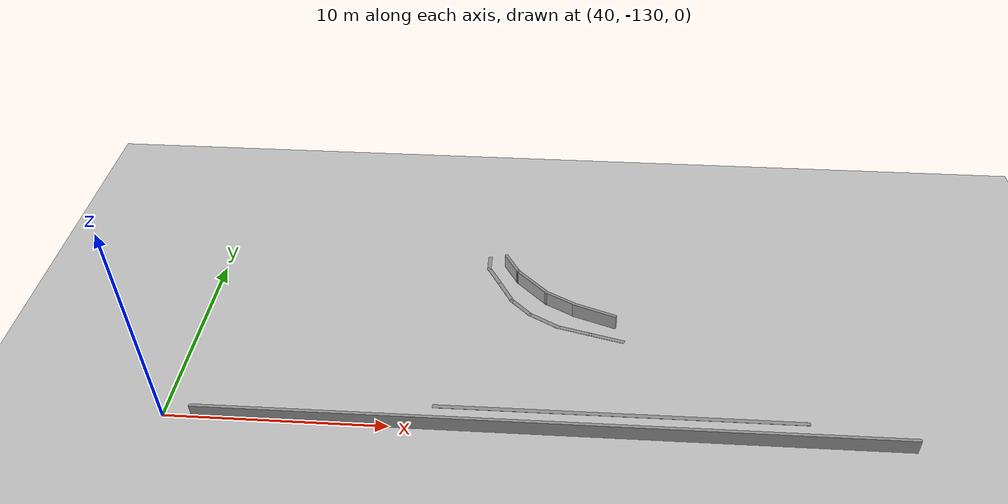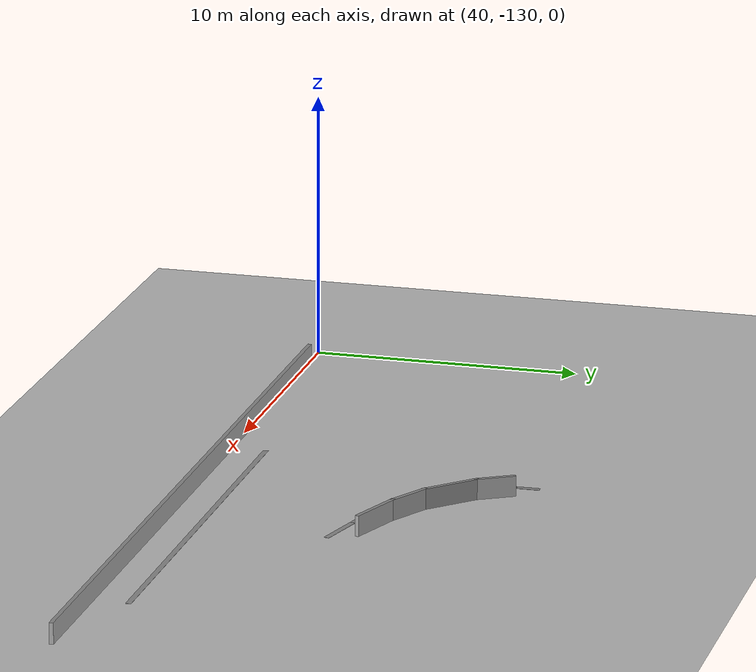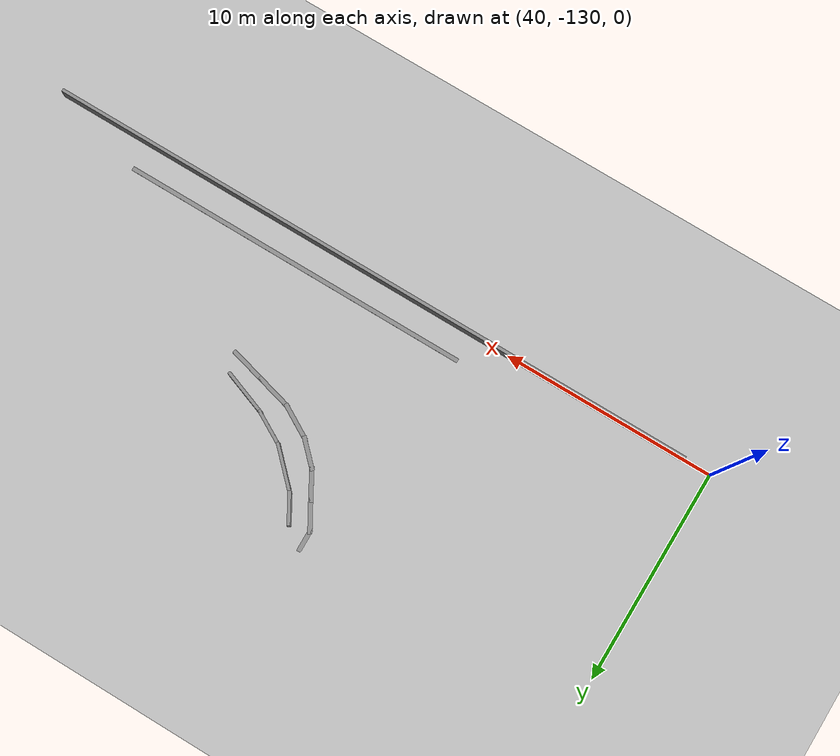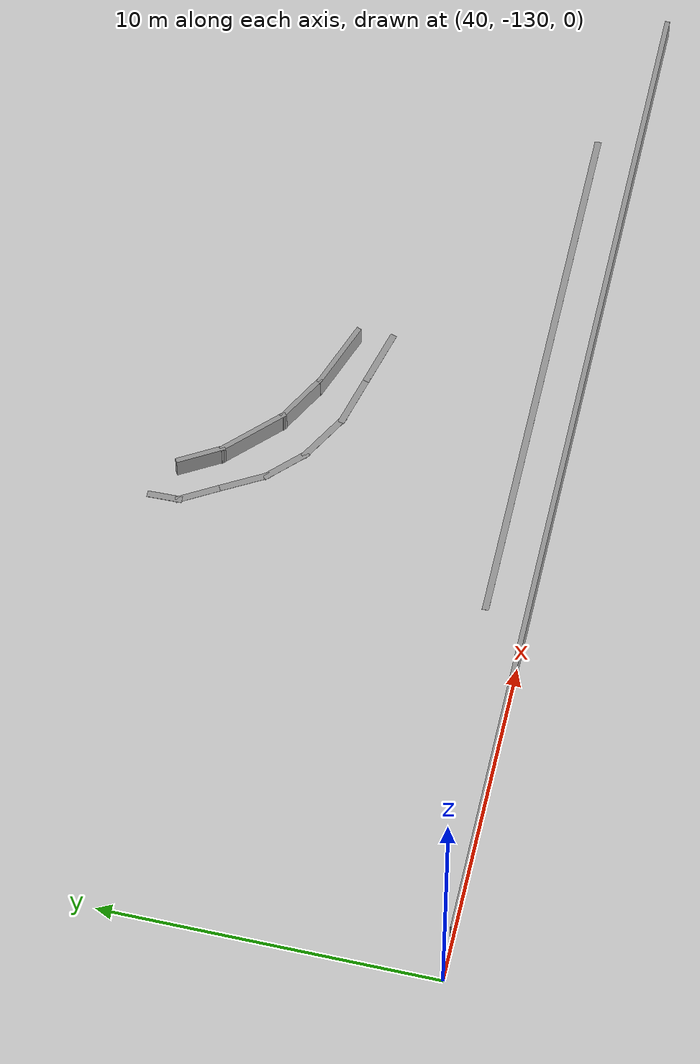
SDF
<sdf version="1.6">
 <world name="default">
  <model name="ground_plane">
   <static>1</static>
   <link name="link">
    <collision name="collision">
     <geometry><plane><normal>0 0 1</normal><size>100 100</size></plane></geometry>
     <surface>
      <contact><collide_bitmask>65535</collide_bitmask></contact>
      <friction><ode><mu>100</mu><mu2>50</mu2></ode></friction>
     </surface>
    </collision>
    <visual name="visual">
     <cast_shadows>0</cast_shadows>
     <geometry><plane><normal>0 0 1</normal><size>100 100</size></plane></geometry>
     <material>
      <script><uri>file://media/materials/scripts/gazebo.material</uri><name>Gazebo/Grey</name></script>
     </material>
    </visual>
   </link>
  </model>
  <model name="GercekDuvarSeritKoyu1">
   <link name="Wall_162">
    <pose>64.8126 -5.48609 0 0 -0 0.523649</pose>
    <inertial>
     <mass>1</mass>
     <inertia><ixx>1</ixx><ixy>0</ixy><ixz>0</ixz><iyy>1</iyy><iyz>0</iyz><izz>1</izz></inertia>
    </inertial>
    <visual name="Wall_162_Visual">
     <pose>0 0 0.375 0 -0 0</pose>
     <geometry><box><size>1.5 0.15 0.75</size></box></geometry>
     <material>
      <script><uri>file://media/materials/scripts/gazebo.material</uri><name>Gazebo/Grey</name></script>
      <ambient>0.5 0.5 0.5 1</ambient>
      <shader type="pixel"><normal_map>__default__</normal_map></shader>
      <diffuse>0.7 0.7 0.7 1</diffuse>
      <specular>0.01 0.01 0.01 1</specular>
      <emissive>0 0 0 1</emissive>
     </material>
     <meta><layer>0</layer></meta>
    </visual>
    <collision name="Wall_162_Collision">
     <pose>0 0 0.375 0 -0 0</pose>
     <geometry><box><size>1.5 0.15 0.75</size></box></geometry>
     <surface>
      <friction>
       <ode><mu>1</mu><mu2>1</mu2><fdir1>0 0 0</fdir1><slip1>0</slip1><slip2>0</slip2></ode>
       <torsional>
        <coefficient>1</coefficient>
        <patch_radius>0</patch_radius>
        <surface_radius>0</surface_radius>
        <use_patch_radius>1</use_patch_radius>
        <ode><slip>0</slip></ode>
       </torsional>
      </friction>
      <bounce><restitution_coefficient>0</restitution_coefficient><threshold>1e+06</threshold></bounce>
      <contact>
       <collide_without_contact>0</collide_without_contact>
       <collide_without_contact_bitmask>1</collide_without_contact_bitmask>
       <collide_bitmask>1</collide_bitmask>
       <ode>
        <soft_cfm>0</soft_cfm>
        <soft_erp>0.2</soft_erp>
        <kp>1e+13</kp>
        <kd>1</kd>
        <max_vel>0.01</max_vel>
        <min_depth>0</min_depth>
       </ode>
       <bullet>
        <split_impulse>1</split_impulse>
        <split_impulse_penetration_threshold>-0.01</split_impulse_penetration_threshold>
        <soft_cfm>0</soft_cfm>
        <soft_erp>0.2</soft_erp>
        <kp>1e+13</kp>
        <kd>1</kd>
       </bullet>
      </contact>
     </surface>
    </collision>
   </link>
   <link name="Wall_163">
    <pose>66.1396 -4.40609 0 0 -0 0.785398</pose>
    <inertial>
     <mass>1</mass>
     <inertia><ixx>1</ixx><ixy>0</ixy><ixz>0</ixz><iyy>1</iyy><iyz>0</iyz><izz>1</izz></inertia>
    </inertial>
    <visual name="Wall_163_Visual">
     <pose>0 0 0.375 0 -0 0</pose>
     <geometry><box><size>2.25 0.15 0.75</size></box></geometry>
     <material>
      <script><uri>file://media/materials/scripts/gazebo.material</uri><name>Gazebo/Grey</name></script>
      <ambient>0.5 0.5 0.5 1</ambient>
      <shader type="pixel"><normal_map>__default__</normal_map></shader>
      <diffuse>0.7 0.7 0.7 1</diffuse>
      <specular>0.01 0.01 0.01 1</specular>
      <emissive>0 0 0 1</emissive>
     </material>
     <meta><layer>0</layer></meta>
    </visual>
    <collision name="Wall_163_Collision">
     <pose>0 0 0.375 0 -0 0</pose>
     <geometry><box><size>2.25 0.15 0.75</size></box></geometry>
     <surface>
      <friction>
       <ode><mu>1</mu><mu2>1</mu2><fdir1>0 0 0</fdir1><slip1>0</slip1><slip2>0</slip2></ode>
       <torsional>
        <coefficient>1</coefficient>
        <patch_radius>0</patch_radius>
        <surface_radius>0</surface_radius>
        <use_patch_radius>1</use_patch_radius>
        <ode><slip>0</slip></ode>
       </torsional>
      </friction>
      <bounce><restitution_coefficient>0</restitution_coefficient><threshold>1e+06</threshold></bounce>
      <contact>
       <collide_without_contact>0</collide_without_contact>
       <collide_without_contact_bitmask>1</collide_without_contact_bitmask>
       <collide_bitmask>1</collide_bitmask>
       <ode>
        <soft_cfm>0</soft_cfm>
        <soft_erp>0.2</soft_erp>
        <kp>1e+13</kp>
        <kd>1</kd>
        <max_vel>0.01</max_vel>
        <min_depth>0</min_depth>
       </ode>
       <bullet>
        <split_impulse>1</split_impulse>
        <split_impulse_penetration_threshold>-0.01</split_impulse_penetration_threshold>
        <soft_cfm>0</soft_cfm>
        <soft_erp>0.2</soft_erp>
        <kp>1e+13</kp>
        <kd>1</kd>
       </bullet>
      </contact>
     </surface>
    </collision>
   </link>
   <link name="Wall_164">
    <pose>67.2706 -2.97109 0 0 -0 1.0595</pose>
    <inertial>
     <mass>1</mass>
     <inertia><ixx>1</ixx><ixy>0</ixy><ixz>0</ixz><iyy>1</iyy><iyz>0</iyz><izz>1</izz></inertia>
    </inertial>
    <visual name="Wall_164_Visual">
     <pose>0 0 0.375 0 -0 0</pose>
     <geometry><box><size>1.7381 0.15 0.75</size></box></geometry>
     <material>
      <script><uri>file://media/materials/scripts/gazebo.material</uri><name>Gazebo/Grey</name></script>
      <ambient>0.5 0.5 0.5 1</ambient>
      <shader type="pixel"><normal_map>__default__</normal_map></shader>
      <diffuse>0.7 0.7 0.7 1</diffuse>
      <specular>0.01 0.01 0.01 1</specular>
      <emissive>0 0 0 1</emissive>
     </material>
     <meta><layer>0</layer></meta>
    </visual>
    <collision name="Wall_164_Collision">
     <pose>0 0 0.375 0 -0 0</pose>
     <geometry><box><size>1.7381 0.15 0.75</size></box></geometry>
     <surface>
      <friction>
       <ode><mu>1</mu><mu2>1</mu2><fdir1>0 0 0</fdir1><slip1>0</slip1><slip2>0</slip2></ode>
       <torsional>
        <coefficient>1</coefficient>
        <patch_radius>0</patch_radius>
        <surface_radius>0</surface_radius>
        <use_patch_radius>1</use_patch_radius>
        <ode><slip>0</slip></ode>
       </torsional>
      </friction>
      <bounce><restitution_coefficient>0</restitution_coefficient><threshold>1e+06</threshold></bounce>
      <contact>
       <collide_without_contact>0</collide_without_contact>
       <collide_without_contact_bitmask>1</collide_without_contact_bitmask>
       <collide_bitmask>1</collide_bitmask>
       <ode>
        <soft_cfm>0</soft_cfm>
        <soft_erp>0.2</soft_erp>
        <kp>1e+13</kp>
        <kd>1</kd>
        <max_vel>0.01</max_vel>
        <min_depth>0</min_depth>
       </ode>
       <bullet>
        <split_impulse>1</split_impulse>
        <split_impulse_penetration_threshold>-0.01</split_impulse_penetration_threshold>
        <soft_cfm>0</soft_cfm>
        <soft_erp>0.2</soft_erp>
        <kp>1e+13</kp>
        <kd>1</kd>
       </bullet>
      </contact>
     </surface>
    </collision>
   </link>
   <link name="Wall_165">
    <pose>68.0293 -1.31009 0 0 -0 1.21606</pose>
    <inertial>
     <mass>1</mass>
     <inertia><ixx>1</ixx><ixy>0</ixy><ixz>0</ixz><iyy>1</iyy><iyz>0</iyz><izz>1</izz></inertia>
    </inertial>
    <visual name="Wall_165_Visual">
     <pose>0 0 0.375 0 -0 0</pose>
     <geometry><box><size>2.21561 0.15 0.75</size></box></geometry>
     <material>
      <script><uri>file://media/materials/scripts/gazebo.material</uri><name>Gazebo/Grey</name></script>
      <ambient>0.5 0.5 0.5 1</ambient>
      <shader type="pixel"><normal_map>__default__</normal_map></shader>
      <diffuse>0.7 0.7 0.7 1</diffuse>
      <specular>0.01 0.01 0.01 1</specular>
      <emissive>0 0 0 1</emissive>
     </material>
     <meta><layer>0</layer></meta>
    </visual>
    <collision name="Wall_165_Collision">
     <pose>0 0 0.375 0 -0 0</pose>
     <geometry><box><size>2.21561 0.15 0.75</size></box></geometry>
     <surface>
      <friction>
       <ode><mu>1</mu><mu2>1</mu2><fdir1>0 0 0</fdir1><slip1>0</slip1><slip2>0</slip2></ode>
       <torsional>
        <coefficient>1</coefficient>
        <patch_radius>0</patch_radius>
        <surface_radius>0</surface_radius>
        <use_patch_radius>1</use_patch_radius>
        <ode><slip>0</slip></ode>
       </torsional>
      </friction>
      <bounce><restitution_coefficient>0</restitution_coefficient><threshold>1e+06</threshold></bounce>
      <contact>
       <collide_without_contact>0</collide_without_contact>
       <collide_without_contact_bitmask>1</collide_without_contact_bitmask>
       <collide_bitmask>1</collide_bitmask>
       <ode>
        <soft_cfm>0</soft_cfm>
        <soft_erp>0.2</soft_erp>
        <kp>1e+13</kp>
        <kd>1</kd>
        <max_vel>0.01</max_vel>
        <min_depth>0</min_depth>
       </ode>
       <bullet>
        <split_impulse>1</split_impulse>
        <split_impulse_penetration_threshold>-0.01</split_impulse_penetration_threshold>
        <soft_cfm>0</soft_cfm>
        <soft_erp>0.2</soft_erp>
        <kp>1e+13</kp>
        <kd>1</kd>
       </bullet>
      </contact>
     </surface>
    </collision>
   </link>
   <link name="Wall_20">
    <pose>75.2501 -3.08159 0 0 -0 1.5708</pose>
    <inertial>
     <mass>1</mass>
     <inertia><ixx>1</ixx><ixy>0</ixy><ixz>0</ixz><iyy>1</iyy><iyz>0</iyz><izz>1</izz></inertia>
    </inertial>
    <visual name="Wall_20_Visual">
     <pose>0 0 0.375 0 -0 0</pose>
     <geometry><box><size>31.25 0.15 0.75</size></box></geometry>
     <material>
      <script><uri>file://media/materials/scripts/gazebo.material</uri><name>Gazebo/Grey</name></script>
      <ambient>0.5 0.5 0.5 1</ambient>
      <shader type="pixel"><normal_map>__default__</normal_map></shader>
      <diffuse>0.7 0.7 0.7 1</diffuse>
      <specular>0.01 0.01 0.01 1</specular>
      <emissive>0 0 0 1</emissive>
     </material>
     <meta><layer>0</layer></meta>
    </visual>
    <collision name="Wall_20_Collision">
     <pose>0 0 0.375 0 -0 0</pose>
     <geometry><box><size>31.25 0.15 0.75</size></box></geometry>
     <surface>
      <friction>
       <ode><mu>1</mu><mu2>1</mu2><fdir1>0 0 0</fdir1><slip1>0</slip1><slip2>0</slip2></ode>
       <torsional>
        <coefficient>1</coefficient>
        <patch_radius>0</patch_radius>
        <surface_radius>0</surface_radius>
        <use_patch_radius>1</use_patch_radius>
        <ode><slip>0</slip></ode>
       </torsional>
      </friction>
      <bounce><restitution_coefficient>0</restitution_coefficient><threshold>1e+06</threshold></bounce>
      <contact>
       <collide_without_contact>0</collide_without_contact>
       <collide_without_contact_bitmask>1</collide_without_contact_bitmask>
       <collide_bitmask>1</collide_bitmask>
       <ode>
        <soft_cfm>0</soft_cfm>
        <soft_erp>0.2</soft_erp>
        <kp>1e+13</kp>
        <kd>1</kd>
        <max_vel>0.01</max_vel>
        <min_depth>0</min_depth>
       </ode>
       <bullet>
        <split_impulse>1</split_impulse>
        <split_impulse_penetration_threshold>-0.01</split_impulse_penetration_threshold>
        <soft_cfm>0</soft_cfm>
        <soft_erp>0.2</soft_erp>
        <kp>1e+13</kp>
        <kd>1</kd>
       </bullet>
      </contact>
     </surface>
    </collision>
   </link>
   <link name="Wall_264">
    <pose>73.9771 -0.048588 0 0 -0 1.5708</pose>
    <visual name="Wall_264_Visual">
     <pose>0 0 0.005 0 -0 0</pose>
     <geometry><box><size>16.55 0.2 0.01</size></box></geometry>
     <material>
      <script><uri>file://media/materials/scripts/gazebo.material</uri><name>Gazebo/Grey</name></script>
      <ambient>1 1 1 1</ambient>
      <shader type="pixel"/>
     </material>
     <meta><layer>0</layer></meta>
    </visual>
    <collision name="Wall_264_Collision">
     <pose>0 0 0.005 0 -0 0</pose>
     <geometry><box><size>16.55 0.2 0.01</size></box></geometry>
     <surface>
      <friction>
       <ode><mu>1</mu><mu2>1</mu2><fdir1>0 0 0</fdir1><slip1>0</slip1><slip2>0</slip2></ode>
       <torsional>
        <coefficient>1</coefficient>
        <patch_radius>0</patch_radius>
        <surface_radius>0</surface_radius>
        <use_patch_radius>1</use_patch_radius>
        <ode><slip>0</slip></ode>
       </torsional>
      </friction>
      <bounce><restitution_coefficient>0</restitution_coefficient><threshold>1e+06</threshold></bounce>
      <contact>
       <collide_without_contact>0</collide_without_contact>
       <collide_without_contact_bitmask>1</collide_without_contact_bitmask>
       <collide_bitmask>1</collide_bitmask>
       <ode>
        <soft_cfm>0</soft_cfm>
        <soft_erp>0.2</soft_erp>
        <kp>1e+13</kp>
        <kd>1</kd>
        <max_vel>0.01</max_vel>
        <min_depth>0</min_depth>
       </ode>
       <bullet>
        <split_impulse>1</split_impulse>
        <split_impulse_penetration_threshold>-0.01</split_impulse_penetration_threshold>
        <soft_cfm>0</soft_cfm>
        <soft_erp>0.2</soft_erp>
        <kp>1e+13</kp>
        <kd>1</kd>
       </bullet>
      </contact>
     </surface>
    </collision>
   </link>
   <link name="Wall_482">
    <pose>64.0051 -6.71659 0 0 -0 0.021173</pose>
    <visual name="Wall_482_Visual">
     <pose>0 0 0.005 0 -0 0</pose>
     <geometry><box><size>1.05012 0.2 0.01</size></box></geometry>
     <material>
      <script><uri>file://media/materials/scripts/gazebo.material</uri><name>Gazebo/Grey</name></script>
      <ambient>1 1 1 1</ambient>
      <shader type="pixel"/>
     </material>
     <meta><layer>0</layer></meta>
    </visual>
    <collision name="Wall_482_Collision">
     <pose>0 0 0.005 0 -0 0</pose>
     <geometry><box><size>1.05012 0.2 0.01</size></box></geometry>
     <surface>
      <friction>
       <ode><mu>1</mu><mu2>1</mu2><fdir1>0 0 0</fdir1><slip1>0</slip1><slip2>0</slip2></ode>
       <torsional>
        <coefficient>1</coefficient>
        <patch_radius>0</patch_radius>
        <surface_radius>0</surface_radius>
        <use_patch_radius>1</use_patch_radius>
        <ode><slip>0</slip></ode>
       </torsional>
      </friction>
      <bounce><restitution_coefficient>0</restitution_coefficient><threshold>1e+06</threshold></bounce>
      <contact>
       <collide_without_contact>0</collide_without_contact>
       <collide_without_contact_bitmask>1</collide_without_contact_bitmask>
       <collide_bitmask>1</collide_bitmask>
       <ode>
        <soft_cfm>0</soft_cfm>
        <soft_erp>0.2</soft_erp>
        <kp>1e+13</kp>
        <kd>1</kd>
        <max_vel>0.01</max_vel>
        <min_depth>0</min_depth>
       </ode>
       <bullet>
        <split_impulse>1</split_impulse>
        <split_impulse_penetration_threshold>-0.01</split_impulse_penetration_threshold>
        <soft_cfm>0</soft_cfm>
        <soft_erp>0.2</soft_erp>
        <kp>1e+13</kp>
        <kd>1</kd>
       </bullet>
      </contact>
     </surface>
    </collision>
   </link>
   <link name="Wall_483">
    <pose>65.0146 -6.37059 0 0 -0 0.523007</pose>
    <visual name="Wall_483_Visual">
     <pose>0 0 0.005 0 -0 0</pose>
     <geometry><box><size>1.5498 0.2 0.01</size></box></geometry>
     <material>
      <script><uri>file://media/materials/scripts/gazebo.material</uri><name>Gazebo/Grey</name></script>
      <ambient>1 1 1 1</ambient>
      <shader type="pixel"/>
     </material>
     <meta><layer>0</layer></meta>
    </visual>
    <collision name="Wall_483_Collision">
     <pose>0 0 0.005 0 -0 0</pose>
     <geometry><box><size>1.5498 0.2 0.01</size></box></geometry>
     <surface>
      <friction>
       <ode><mu>1</mu><mu2>1</mu2><fdir1>0 0 0</fdir1><slip1>0</slip1><slip2>0</slip2></ode>
       <torsional>
        <coefficient>1</coefficient>
        <patch_radius>0</patch_radius>
        <surface_radius>0</surface_radius>
        <use_patch_radius>1</use_patch_radius>
        <ode><slip>0</slip></ode>
       </torsional>
      </friction>
      <bounce><restitution_coefficient>0</restitution_coefficient><threshold>1e+06</threshold></bounce>
      <contact>
       <collide_without_contact>0</collide_without_contact>
       <collide_without_contact_bitmask>1</collide_without_contact_bitmask>
       <collide_bitmask>1</collide_bitmask>
       <ode>
        <soft_cfm>0</soft_cfm>
        <soft_erp>0.2</soft_erp>
        <kp>1e+13</kp>
        <kd>1</kd>
        <max_vel>0.01</max_vel>
        <min_depth>0</min_depth>
       </ode>
       <bullet>
        <split_impulse>1</split_impulse>
        <split_impulse_penetration_threshold>-0.01</split_impulse_penetration_threshold>
        <soft_cfm>0</soft_cfm>
        <soft_erp>0.2</soft_erp>
        <kp>1e+13</kp>
        <kd>1</kd>
       </bullet>
      </contact>
     </surface>
    </collision>
   </link>
   <link name="Wall_484">
    <pose>66.1836 -5.70459 0 0 -0 0.512674</pose>
    <visual name="Wall_484_Visual">
     <pose>0 0 0.005 0 -0 0</pose>
     <geometry><box><size>1.54168 0.2 0.01</size></box></geometry>
     <material>
      <script><uri>file://media/materials/scripts/gazebo.material</uri><name>Gazebo/Grey</name></script>
      <ambient>1 1 1 1</ambient>
      <shader type="pixel"/>
     </material>
     <meta><layer>0</layer></meta>
    </visual>
    <collision name="Wall_484_Collision">
     <pose>0 0 0.005 0 -0 0</pose>
     <geometry><box><size>1.54168 0.2 0.01</size></box></geometry>
     <surface>
      <friction>
       <ode><mu>1</mu><mu2>1</mu2><fdir1>0 0 0</fdir1><slip1>0</slip1><slip2>0</slip2></ode>
       <torsional>
        <coefficient>1</coefficient>
        <patch_radius>0</patch_radius>
        <surface_radius>0</surface_radius>
        <use_patch_radius>1</use_patch_radius>
        <ode><slip>0</slip></ode>
       </torsional>
      </friction>
      <bounce><restitution_coefficient>0</restitution_coefficient><threshold>1e+06</threshold></bounce>
      <contact>
       <collide_without_contact>0</collide_without_contact>
       <collide_without_contact_bitmask>1</collide_without_contact_bitmask>
       <collide_bitmask>1</collide_bitmask>
       <ode>
        <soft_cfm>0</soft_cfm>
        <soft_erp>0.2</soft_erp>
        <kp>1e+13</kp>
        <kd>1</kd>
        <max_vel>0.01</max_vel>
        <min_depth>0</min_depth>
       </ode>
       <bullet>
        <split_impulse>1</split_impulse>
        <split_impulse_penetration_threshold>-0.01</split_impulse_penetration_threshold>
        <soft_cfm>0</soft_cfm>
        <soft_erp>0.2</soft_erp>
        <kp>1e+13</kp>
        <kd>1</kd>
       </bullet>
      </contact>
     </surface>
    </collision>
   </link>
   <link name="Wall_485">
    <pose>67.2456 -4.89859 0 0 -0 0.784874</pose>
    <visual name="Wall_485_Visual">
     <pose>0 0 0.005 0 -0 0</pose>
     <geometry><box><size>1.5501 0.2 0.01</size></box></geometry>
     <material>
      <script><uri>file://media/materials/scripts/gazebo.material</uri><name>Gazebo/Grey</name></script>
      <ambient>1 1 1 1</ambient>
      <shader type="pixel"/>
     </material>
     <meta><layer>0</layer></meta>
    </visual>
    <collision name="Wall_485_Collision">
     <pose>0 0 0.005 0 -0 0</pose>
     <geometry><box><size>1.5501 0.2 0.01</size></box></geometry>
     <surface>
      <friction>
       <ode><mu>1</mu><mu2>1</mu2><fdir1>0 0 0</fdir1><slip1>0</slip1><slip2>0</slip2></ode>
       <torsional>
        <coefficient>1</coefficient>
        <patch_radius>0</patch_radius>
        <surface_radius>0</surface_radius>
        <use_patch_radius>1</use_patch_radius>
        <ode><slip>0</slip></ode>
       </torsional>
      </friction>
      <bounce><restitution_coefficient>0</restitution_coefficient><threshold>1e+06</threshold></bounce>
      <contact>
       <collide_without_contact>0</collide_without_contact>
       <collide_without_contact_bitmask>1</collide_without_contact_bitmask>
       <collide_bitmask>1</collide_bitmask>
       <ode>
        <soft_cfm>0</soft_cfm>
        <soft_erp>0.2</soft_erp>
        <kp>1e+13</kp>
        <kd>1</kd>
        <max_vel>0.01</max_vel>
        <min_depth>0</min_depth>
       </ode>
       <bullet>
        <split_impulse>1</split_impulse>
        <split_impulse_penetration_threshold>-0.01</split_impulse_penetration_threshold>
        <soft_cfm>0</soft_cfm>
        <soft_erp>0.2</soft_erp>
        <kp>1e+13</kp>
        <kd>1</kd>
       </bullet>
      </contact>
     </surface>
    </collision>
   </link>
   <link name="Wall_486">
    <pose>68.1231 -3.72859 0 0 -0 1.04731</pose>
    <visual name="Wall_486_Visual">
     <pose>0 0 0.005 0 -0 0</pose>
     <geometry><box><size>1.80029 0.2 0.01</size></box></geometry>
     <material>
      <script><uri>file://media/materials/scripts/gazebo.material</uri><name>Gazebo/Grey</name></script>
      <ambient>1 1 1 1</ambient>
      <shader type="pixel"/>
     </material>
     <meta><layer>0</layer></meta>
    </visual>
    <collision name="Wall_486_Collision">
     <pose>0 0 0.005 0 -0 0</pose>
     <geometry><box><size>1.80029 0.2 0.01</size></box></geometry>
     <surface>
      <friction>
       <ode><mu>1</mu><mu2>1</mu2><fdir1>0 0 0</fdir1><slip1>0</slip1><slip2>0</slip2></ode>
       <torsional>
        <coefficient>1</coefficient>
        <patch_radius>0</patch_radius>
        <surface_radius>0</surface_radius>
        <use_patch_radius>1</use_patch_radius>
        <ode><slip>0</slip></ode>
       </torsional>
      </friction>
      <bounce><restitution_coefficient>0</restitution_coefficient><threshold>1e+06</threshold></bounce>
      <contact>
       <collide_without_contact>0</collide_without_contact>
       <collide_without_contact_bitmask>1</collide_without_contact_bitmask>
       <collide_bitmask>1</collide_bitmask>
       <ode>
        <soft_cfm>0</soft_cfm>
        <soft_erp>0.2</soft_erp>
        <kp>1e+13</kp>
        <kd>1</kd>
        <max_vel>0.01</max_vel>
        <min_depth>0</min_depth>
       </ode>
       <bullet>
        <split_impulse>1</split_impulse>
        <split_impulse_penetration_threshold>-0.01</split_impulse_penetration_threshold>
        <soft_cfm>0</soft_cfm>
        <soft_erp>0.2</soft_erp>
        <kp>1e+13</kp>
        <kd>1</kd>
       </bullet>
      </contact>
     </surface>
    </collision>
   </link>
   <link name="Wall_487">
    <pose>68.7301 -2.26309 0 0 -0 1.30899</pose>
    <visual name="Wall_487_Visual">
     <pose>0 0 0.005 0 -0 0</pose>
     <geometry><box><size>1.79998 0.2 0.01</size></box></geometry>
     <material>
      <script><uri>file://media/materials/scripts/gazebo.material</uri><name>Gazebo/Grey</name></script>
      <ambient>1 1 1 1</ambient>
      <shader type="pixel"/>
     </material>
     <meta><layer>0</layer></meta>
    </visual>
    <collision name="Wall_487_Collision">
     <pose>0 0 0.005 0 -0 0</pose>
     <geometry><box><size>1.79998 0.2 0.01</size></box></geometry>
     <surface>
      <friction>
       <ode><mu>1</mu><mu2>1</mu2><fdir1>0 0 0</fdir1><slip1>0</slip1><slip2>0</slip2></ode>
       <torsional>
        <coefficient>1</coefficient>
        <patch_radius>0</patch_radius>
        <surface_radius>0</surface_radius>
        <use_patch_radius>1</use_patch_radius>
        <ode><slip>0</slip></ode>
       </torsional>
      </friction>
      <bounce><restitution_coefficient>0</restitution_coefficient><threshold>1e+06</threshold></bounce>
      <contact>
       <collide_without_contact>0</collide_without_contact>
       <collide_without_contact_bitmask>1</collide_without_contact_bitmask>
       <collide_bitmask>1</collide_bitmask>
       <ode>
        <soft_cfm>0</soft_cfm>
        <soft_erp>0.2</soft_erp>
        <kp>1e+13</kp>
        <kd>1</kd>
        <max_vel>0.01</max_vel>
        <min_depth>0</min_depth>
       </ode>
       <bullet>
        <split_impulse>1</split_impulse>
        <split_impulse_penetration_threshold>-0.01</split_impulse_penetration_threshold>
        <soft_cfm>0</soft_cfm>
        <soft_erp>0.2</soft_erp>
        <kp>1e+13</kp>
        <kd>1</kd>
       </bullet>
      </contact>
     </surface>
    </collision>
   </link>
   <link name="Wall_488">
    <pose>69.1441 -0.71759 0 0 -0 1.30915</pose>
    <visual name="Wall_488_Visual">
     <pose>0 0 0.005 0 -0 0</pose>
     <geometry><box><size>1.80048 0.2 0.01</size></box></geometry>
     <material>
      <script><uri>file://media/materials/scripts/gazebo.material</uri><name>Gazebo/Grey</name></script>
      <ambient>1 1 1 1</ambient>
      <shader type="pixel"/>
     </material>
     <meta><layer>0</layer></meta>
    </visual>
    <collision name="Wall_488_Collision">
     <pose>0 0 0.005 0 -0 0</pose>
     <geometry><box><size>1.80048 0.2 0.01</size></box></geometry>
     <surface>
      <friction>
       <ode><mu>1</mu><mu2>1</mu2><fdir1>0 0 0</fdir1><slip1>0</slip1><slip2>0</slip2></ode>
       <torsional>
        <coefficient>1</coefficient>
        <patch_radius>0</patch_radius>
        <surface_radius>0</surface_radius>
        <use_patch_radius>1</use_patch_radius>
        <ode><slip>0</slip></ode>
       </torsional>
      </friction>
      <bounce><restitution_coefficient>0</restitution_coefficient><threshold>1e+06</threshold></bounce>
      <contact>
       <collide_without_contact>0</collide_without_contact>
       <collide_without_contact_bitmask>1</collide_without_contact_bitmask>
       <collide_bitmask>1</collide_bitmask>
       <ode>
        <soft_cfm>0</soft_cfm>
        <soft_erp>0.2</soft_erp>
        <kp>1e+13</kp>
        <kd>1</kd>
        <max_vel>0.01</max_vel>
        <min_depth>0</min_depth>
       </ode>
       <bullet>
        <split_impulse>1</split_impulse>
        <split_impulse_penetration_threshold>-0.01</split_impulse_penetration_threshold>
        <soft_cfm>0</soft_cfm>
        <soft_erp>0.2</soft_erp>
        <kp>1e+13</kp>
        <kd>1</kd>
       </bullet>
      </contact>
     </surface>
    </collision>
   </link>
   <static>1</static>
   <pose>59.9324 -54.7034 -0 0 0 -1.5695</pose>
  </model>
 </world>
</sdf>
